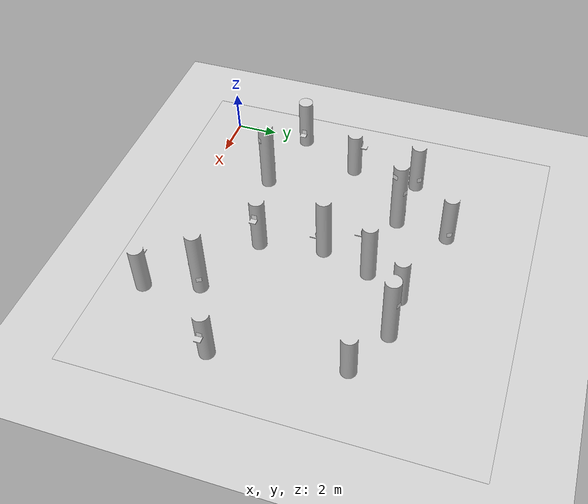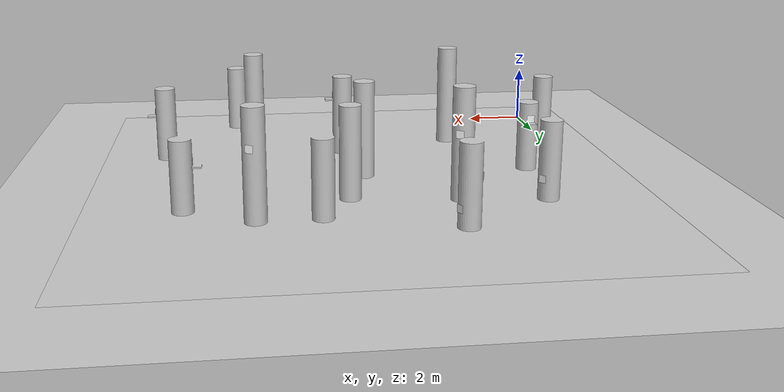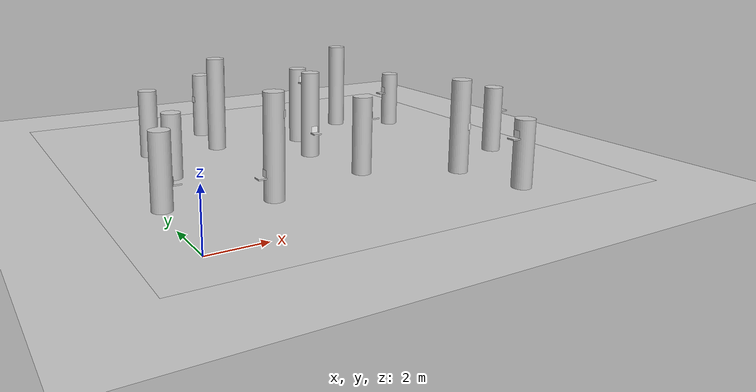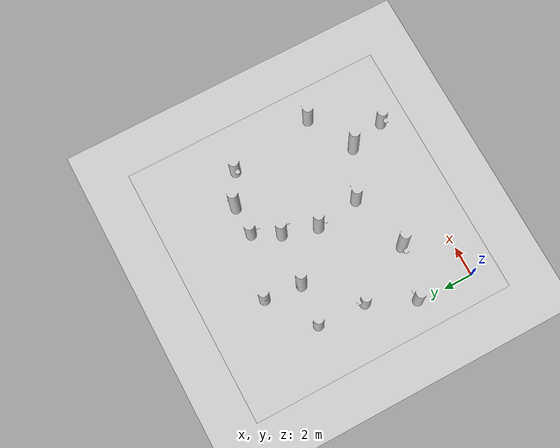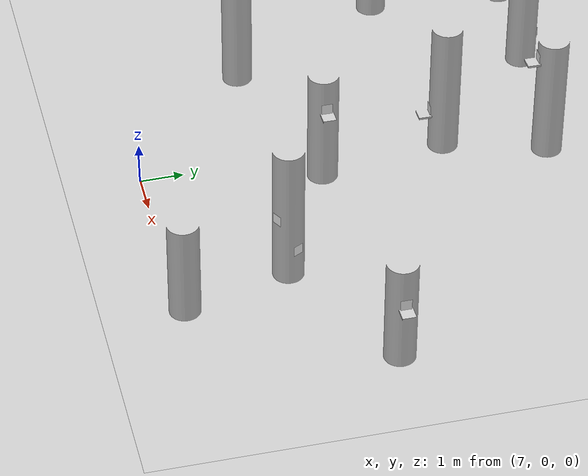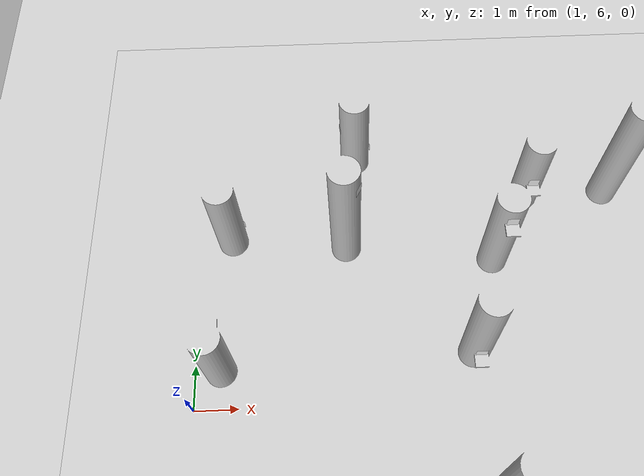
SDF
<?xml version="1.0" ?>
<sdf version="1.9">
  <world name="icuas26_3_world">
    <physics type="ode">
      <max_step_size>0.001</max_step_size>
      <real_time_factor>1.0</real_time_factor>
      <real_time_update_rate>1000</real_time_update_rate>
    </physics>
    <plugin name='gz::sim::systems::Physics' filename='libgz-sim-physics-system.so'/>
    <plugin name='gz::sim::systems::UserCommands' filename='libgz-sim-user-commands-system.so'/>
    <plugin name='gz::sim::systems::SceneBroadcaster' filename='libgz-sim-scene-broadcaster-system.so'/>
    <plugin name='gz::sim::systems::Contact' filename='libgz-sim-contact-system.so'/>
    <plugin name='gz::sim::systems::Imu' filename='libgz-sim-imu-system.so'/>
    <plugin name='gz::sim::systems::AirPressure' filename='libgz-sim-air-pressure-system.so'/>
    <plugin name='gz::sim::systems::Sensors' filename='libgz-sim-sensors-system.so'>
      <render_engine>ogre2</render_engine>
    </plugin>
    <gravity>0 0 -9.80665</gravity>
    <magnetic_field>6e-06 2.3e-05 -4.2e-05</magnetic_field>
    <atmosphere type='adiabatic'/>
    <scene>
      <grid>false</grid>
      <ambient>0.4 0.4 0.4 1</ambient>
      <background>0.7 0.7 0.7 1</background>
      <shadows>true</shadows>
    </scene>
    <model name="ground_plane">
      <pose>7.25 7.25 0 0 0 0</pose>
      <static>true</static>
      <link name="link">
        <collision name="collision">
          <geometry>
            <plane>
              <normal>0 0 1</normal>
              <size>18 18</size>
            </plane>
          </geometry>
        </collision>
        <visual name="visual">
          <geometry>
            <plane>
              <normal>0 0 1</normal>
              <size>18 18</size>
            </plane>
          </geometry>
          <material>
            <ambient>0.8 0.8 0.8 1</ambient>
            <diffuse>0.8 0.8 0.8 1</diffuse>
            <specular>0.8 0.8 0.8 1</specular>
          </material>
        </visual>
      </link>
    </model>
    <include>
      <pose>0 0 0 0 0 0</pose>
      <uri>model://icuas26_3</uri>
    </include>
    <include>
      <pose>3.3042047443389895 3.0164105892181396 0.9504941105842593 1.5707963267948966 0.0 -1.5707963267948966</pose>
      <uri>model://aruco_markers/aruco_marker_0019</uri>
    </include>
    <include>
      <pose>7.280031681060792 6.7047467651367185 1.101120948791504 1.5707963267948966 0.0 0.0</pose>
      <uri>model://aruco_markers/aruco_marker_0015</uri>
    </include>
    <include>
      <pose>1.5789307355880737 7.205932098388672 1.8464856147766113 1.5707963267948966 0.0 3.141592653589793</pose>
      <uri>model://aruco_markers/aruco_marker_0012</uri>
    </include>
    <include>
      <pose>11.232184928894043 0.07623559981584549 1.9033888578414917 1.5707963267948966 0.0 -1.5707963267948966</pose>
      <uri>model://aruco_markers/aruco_marker_0013</uri>
    </include>
    <include>
      <pose>0.5296725807189941 3.8332643508911133 0.9541147351264954 1.5707963267948966 0.0 1.5707963267948966</pose>
      <uri>model://aruco_markers/aruco_marker_0017</uri>
    </include>
    <include>
      <pose>12.803356689453125 9.99436092376709 1.5924251079559324 1.5707963267948966 0.0 -1.5707963267948966</pose>
      <uri>model://aruco_markers/aruco_marker_0018</uri>
    </include>
    <include>
      <pose>8.088266807556153 4.088751316070557 2.1333937644958496 1.5707963267948966 0.0 1.5707963267948966</pose>
      <uri>model://aruco_markers/aruco_marker_0016</uri>
    </include>
    <include>
      <pose>7.9748663902282715 8.995220703125 2.670133113861084 1.5707963267948966 0.0 0.0</pose>
      <uri>model://aruco_markers/aruco_marker_0020</uri>
    </include>
    <include>
      <pose>14.406678634643555 4.185126304626465 1.713401436805725 1.5707963267948966 0.0 1.5707963267948966</pose>
      <uri>model://aruco_markers/aruco_marker_0011</uri>
    </include>
    <include>
      <pose>8.950425148010254 10.696406883239746 1.3046667575836184 1.5707963267948966 0.0 0.0</pose>
      <uri>model://aruco_markers/aruco_marker_0014</uri>
    </include>
    <include>
      <pose>2.0369578420627246 10.270008342205937 0.7220956073790952 1.5707963267948966 0.0 2.258019880151343</pose>
      <uri>model://aruco_markers/aruco_marker_0010</uri>
    </include>
    <include>
      <pose>11.092804271980144 2.2277905482491134 1.7107628694726675 1.5707963267948966 0.0 0.4908710209265993</pose>
      <uri>model://aruco_markers/aruco_marker_0027</uri>
    </include>
    <include>
      <pose>4.780031246632437 9.613064703058429 3.1569114038540373 1.5707963267948966 0.0 1.0799192565542985</pose>
      <uri>model://aruco_markers/aruco_marker_0025</uri>
    </include>
    <include>
      <pose>11.104934107733106 11.428221239612693 2.341733596088834 1.5707963267948968 0.0 2.6507277584534616</pose>
      <uri>model://aruco_markers/aruco_marker_0028</uri>
    </include>
    <include>
      <pose>4.450665083008288 10.147992734966229 0.7855358888677281 1.5707963267948966 0.0 -3.0434156275847775</pose>
      <uri>model://aruco_markers/aruco_marker_0003</uri>
    </include>
    <include>
      <pose>4.658683764112178 10.102991846781382 2.2006346218593675 1.5707963267948966 0.0 2.6507244943217483</pose>
      <uri>model://aruco_markers/aruco_marker_0024</uri>
    </include>
    <include>
      <pose>11.223481012407804 2.67358115696361 0.895764261708703 1.5707963267948966 0.0 2.0616628230474494</pose>
      <uri>model://aruco_markers/aruco_marker_0002</uri>
    </include>
    <include>
      <pose>3.934883503191662 2.800479779805857 2.8578442506721284 1.5707963267948966 0.0 0.883569998619699</pose>
      <uri>model://aruco_markers/aruco_marker_0006</uri>
    </include>
    <include>
      <pose>5.111198445977226 12.394168674244076 0.6348794746323461 1.5707963267948968 0.0 2.0616673863257757</pose>
      <uri>model://aruco_markers/aruco_marker_0001</uri>
    </include>
    <include>
      <pose>4.438960751820465 12.231859521220699 1.57515245039408 1.5707963267948968 0.0 -1.4726255053350379</pose>
      <uri>model://aruco_markers/aruco_marker_0007</uri>
    </include>
    <light type="directional" name="sun">
      <cast_shadows>true</cast_shadows>
      <pose>0 0 20 0 0 0</pose>
      <diffuse>0.8 0.8 0.8 1</diffuse>
      <specular>0.2 0.2 0.2 1</specular>
      <attenuation>
        <range>1000</range>
        <constant>0.9</constant>
        <linear>0.01</linear>
        <quadratic>0.001</quadratic>
      </attenuation>
      <direction>-0.5 0.1 -0.9</direction>
    </light>
  </world>
</sdf>

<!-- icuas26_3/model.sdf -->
<sdf version="1.9">
  <model name="icuas26_3">
    <static>true</static>
    <link name="link">
      <collision name="collision">
        <geometry>
          <mesh>
            <uri>model://icuas26_3/meshes/icuas26_3.stl</uri>
          </mesh>
        </geometry>
      </collision>
      <visual name="visual">
        <geometry>
          <mesh>
            <uri>model://icuas26_3/meshes/icuas26_3.stl</uri>
          </mesh>
        </geometry>
        <material>
            <ambient>0.8 0.8 0.8 1</ambient>
            <diffuse>0.8 0.8 0.8 1</diffuse>
            <specular>0.8 0.8 0.8 1</specular>
        </material>
      </visual>
    </link>
  </model>
</sdf>

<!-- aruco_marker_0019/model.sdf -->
<sdf version="1.9">
  <model name="aruco_marker_0019">
    <static>true</static>
    <link name="link">
      <visual name="aruco_marker_0019_vis">
        <pose>0 0 0 0 0 0</pose>
        <geometry>
          <plane>
            <normal>0 0 1</normal>
            <size>0.25 0.25</size>
          </plane>
        </geometry>
        <material>
          <pbr>
            <metal>
              <albedo_map>marker_0019.png</albedo_map>
              <metalness>0.0</metalness>
            </metal>
          </pbr>
          <ambient>1 1 1 1</ambient>
          <diffuse>1 1 1 1</diffuse>
          <specular>0 0 0 1</specular>
        </material>
      </visual>
    </link>
  </model>
</sdf>

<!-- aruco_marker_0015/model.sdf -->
<sdf version="1.9">
  <model name="aruco_marker_0015">
    <static>true</static>
    <link name="link">
      <visual name="aruco_marker_0015_vis">
        <pose>0 0 0 0 0 0</pose>
        <geometry>
          <plane>
            <normal>0 0 1</normal>
            <size>0.25 0.25</size>
          </plane>
        </geometry>
        <material>
          <pbr>
            <metal>
              <albedo_map>marker_0015.png</albedo_map>
              <metalness>0.0</metalness>
            </metal>
          </pbr>
          <ambient>1 1 1 1</ambient>
          <diffuse>1 1 1 1</diffuse>
          <specular>0 0 0 1</specular>
        </material>
      </visual>
    </link>
  </model>
</sdf>

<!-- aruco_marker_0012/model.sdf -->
<sdf version="1.9">
  <model name="aruco_marker_0012">
    <static>true</static>
    <link name="link">
      <visual name="aruco_marker_0012_vis">
        <pose>0 0 0 0 0 0</pose>
        <geometry>
          <plane>
            <normal>0 0 1</normal>
            <size>0.25 0.25</size>
          </plane>
        </geometry>
        <material>
          <pbr>
            <metal>
              <albedo_map>marker_0012.png</albedo_map>
              <metalness>0.0</metalness>
            </metal>
          </pbr>
          <ambient>1 1 1 1</ambient>
          <diffuse>1 1 1 1</diffuse>
          <specular>0 0 0 1</specular>
        </material>
      </visual>
    </link>
  </model>
</sdf>

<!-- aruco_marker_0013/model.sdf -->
<sdf version="1.9">
  <model name="aruco_marker_0013">
    <static>true</static>
    <link name="link">
      <visual name="aruco_marker_0013_vis">
        <pose>0 0 0 0 0 0</pose>
        <geometry>
          <plane>
            <normal>0 0 1</normal>
            <size>0.25 0.25</size>
          </plane>
        </geometry>
        <material>
          <pbr>
            <metal>
              <albedo_map>marker_0013.png</albedo_map>
              <metalness>0.0</metalness>
            </metal>
          </pbr>
          <ambient>1 1 1 1</ambient>
          <diffuse>1 1 1 1</diffuse>
          <specular>0 0 0 1</specular>
        </material>
      </visual>
    </link>
  </model>
</sdf>

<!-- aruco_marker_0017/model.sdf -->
<sdf version="1.9">
  <model name="aruco_marker_0017">
    <static>true</static>
    <link name="link">
      <visual name="aruco_marker_0017_vis">
        <pose>0 0 0 0 0 0</pose>
        <geometry>
          <plane>
            <normal>0 0 1</normal>
            <size>0.25 0.25</size>
          </plane>
        </geometry>
        <material>
          <pbr>
            <metal>
              <albedo_map>marker_0017.png</albedo_map>
              <metalness>0.0</metalness>
            </metal>
          </pbr>
          <ambient>1 1 1 1</ambient>
          <diffuse>1 1 1 1</diffuse>
          <specular>0 0 0 1</specular>
        </material>
      </visual>
    </link>
  </model>
</sdf>

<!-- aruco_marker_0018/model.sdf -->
<sdf version="1.9">
  <model name="aruco_marker_0018">
    <static>true</static>
    <link name="link">
      <visual name="aruco_marker_0018_vis">
        <pose>0 0 0 0 0 0</pose>
        <geometry>
          <plane>
            <normal>0 0 1</normal>
            <size>0.25 0.25</size>
          </plane>
        </geometry>
        <material>
          <pbr>
            <metal>
              <albedo_map>marker_0018.png</albedo_map>
              <metalness>0.0</metalness>
            </metal>
          </pbr>
          <ambient>1 1 1 1</ambient>
          <diffuse>1 1 1 1</diffuse>
          <specular>0 0 0 1</specular>
        </material>
      </visual>
    </link>
  </model>
</sdf>

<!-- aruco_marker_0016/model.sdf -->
<sdf version="1.9">
  <model name="aruco_marker_0016">
    <static>true</static>
    <link name="link">
      <visual name="aruco_marker_0016_vis">
        <pose>0 0 0 0 0 0</pose>
        <geometry>
          <plane>
            <normal>0 0 1</normal>
            <size>0.25 0.25</size>
          </plane>
        </geometry>
        <material>
          <pbr>
            <metal>
              <albedo_map>marker_0016.png</albedo_map>
              <metalness>0.0</metalness>
            </metal>
          </pbr>
          <ambient>1 1 1 1</ambient>
          <diffuse>1 1 1 1</diffuse>
          <specular>0 0 0 1</specular>
        </material>
      </visual>
    </link>
  </model>
</sdf>

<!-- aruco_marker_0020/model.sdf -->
<sdf version="1.9">
  <model name="aruco_marker_0020">
    <static>true</static>
    <link name="link">
      <visual name="aruco_marker_0020_vis">
        <pose>0 0 0 0 0 0</pose>
        <geometry>
          <plane>
            <normal>0 0 1</normal>
            <size>0.25 0.25</size>
          </plane>
        </geometry>
        <material>
          <pbr>
            <metal>
              <albedo_map>marker_0020.png</albedo_map>
              <metalness>0.0</metalness>
            </metal>
          </pbr>
          <ambient>1 1 1 1</ambient>
          <diffuse>1 1 1 1</diffuse>
          <specular>0 0 0 1</specular>
        </material>
      </visual>
    </link>
  </model>
</sdf>

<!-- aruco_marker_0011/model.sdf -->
<sdf version="1.9">
  <model name="aruco_marker_0011">
    <static>true</static>
    <link name="link">
      <visual name="aruco_marker_0011_vis">
        <pose>0 0 0 0 0 0</pose>
        <geometry>
          <plane>
            <normal>0 0 1</normal>
            <size>0.25 0.25</size>
          </plane>
        </geometry>
        <material>
          <pbr>
            <metal>
              <albedo_map>marker_0011.png</albedo_map>
              <metalness>0.0</metalness>
            </metal>
          </pbr>
          <ambient>1 1 1 1</ambient>
          <diffuse>1 1 1 1</diffuse>
          <specular>0 0 0 1</specular>
        </material>
      </visual>
    </link>
  </model>
</sdf>

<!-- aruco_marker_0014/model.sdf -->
<sdf version="1.9">
  <model name="aruco_marker_0014">
    <static>true</static>
    <link name="link">
      <visual name="aruco_marker_0014_vis">
        <pose>0 0 0 0 0 0</pose>
        <geometry>
          <plane>
            <normal>0 0 1</normal>
            <size>0.25 0.25</size>
          </plane>
        </geometry>
        <material>
          <pbr>
            <metal>
              <albedo_map>marker_0014.png</albedo_map>
              <metalness>0.0</metalness>
            </metal>
          </pbr>
          <ambient>1 1 1 1</ambient>
          <diffuse>1 1 1 1</diffuse>
          <specular>0 0 0 1</specular>
        </material>
      </visual>
    </link>
  </model>
</sdf>

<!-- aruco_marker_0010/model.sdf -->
<sdf version="1.9">
  <model name="aruco_marker_0010">
    <static>true</static>
    <link name="link">
      <visual name="aruco_marker_0010_vis">
        <pose>0 0 0 0 0 0</pose>
        <geometry>
          <plane>
            <normal>0 0 1</normal>
            <size>0.25 0.25</size>
          </plane>
        </geometry>
        <material>
          <pbr>
            <metal>
              <albedo_map>marker_0010.png</albedo_map>
              <metalness>0.0</metalness>
            </metal>
          </pbr>
          <ambient>1 1 1 1</ambient>
          <diffuse>1 1 1 1</diffuse>
          <specular>0 0 0 1</specular>
        </material>
      </visual>
    </link>
  </model>
</sdf>

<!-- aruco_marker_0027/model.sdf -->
<sdf version="1.9">
  <model name="aruco_marker_0027">
    <static>true</static>
    <link name="link">
      <visual name="aruco_marker_0027_vis">
        <pose>0 0 0 0 0 0</pose>
        <geometry>
          <plane>
            <normal>0 0 1</normal>
            <size>0.25 0.25</size>
          </plane>
        </geometry>
        <material>
          <pbr>
            <metal>
              <albedo_map>marker_0027.png</albedo_map>
              <metalness>0.0</metalness>
            </metal>
          </pbr>
          <ambient>1 1 1 1</ambient>
          <diffuse>1 1 1 1</diffuse>
          <specular>0 0 0 1</specular>
        </material>
      </visual>
    </link>
  </model>
</sdf>

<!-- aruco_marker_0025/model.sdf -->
<sdf version="1.9">
  <model name="aruco_marker_0025">
    <static>true</static>
    <link name="link">
      <visual name="aruco_marker_0025_vis">
        <pose>0 0 0 0 0 0</pose>
        <geometry>
          <plane>
            <normal>0 0 1</normal>
            <size>0.25 0.25</size>
          </plane>
        </geometry>
        <material>
          <pbr>
            <metal>
              <albedo_map>marker_0025.png</albedo_map>
              <metalness>0.0</metalness>
            </metal>
          </pbr>
          <ambient>1 1 1 1</ambient>
          <diffuse>1 1 1 1</diffuse>
          <specular>0 0 0 1</specular>
        </material>
      </visual>
    </link>
  </model>
</sdf>

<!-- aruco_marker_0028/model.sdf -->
<sdf version="1.9">
  <model name="aruco_marker_0028">
    <static>true</static>
    <link name="link">
      <visual name="aruco_marker_0028_vis">
        <pose>0 0 0 0 0 0</pose>
        <geometry>
          <plane>
            <normal>0 0 1</normal>
            <size>0.25 0.25</size>
          </plane>
        </geometry>
        <material>
          <pbr>
            <metal>
              <albedo_map>marker_0028.png</albedo_map>
              <metalness>0.0</metalness>
            </metal>
          </pbr>
          <ambient>1 1 1 1</ambient>
          <diffuse>1 1 1 1</diffuse>
          <specular>0 0 0 1</specular>
        </material>
      </visual>
    </link>
  </model>
</sdf>

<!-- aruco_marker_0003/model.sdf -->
<sdf version="1.9">
  <model name="aruco_marker_0003">
    <static>true</static>
    <link name="link">
      <visual name="aruco_marker_0003_vis">
        <pose>0 0 0 0 0 0</pose>
        <geometry>
          <plane>
            <normal>0 0 1</normal>
            <size>0.25 0.25</size>
          </plane>
        </geometry>
        <material>
          <pbr>
            <metal>
              <albedo_map>marker_0003.png</albedo_map>
              <metalness>0.0</metalness>
            </metal>
          </pbr>
          <ambient>1 1 1 1</ambient>
          <diffuse>1 1 1 1</diffuse>
          <specular>0 0 0 1</specular>
        </material>
      </visual>
    </link>
  </model>
</sdf>

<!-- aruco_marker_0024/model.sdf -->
<sdf version="1.9">
  <model name="aruco_marker_0024">
    <static>true</static>
    <link name="link">
      <visual name="aruco_marker_0024_vis">
        <pose>0 0 0 0 0 0</pose>
        <geometry>
          <plane>
            <normal>0 0 1</normal>
            <size>0.25 0.25</size>
          </plane>
        </geometry>
        <material>
          <pbr>
            <metal>
              <albedo_map>marker_0024.png</albedo_map>
              <metalness>0.0</metalness>
            </metal>
          </pbr>
          <ambient>1 1 1 1</ambient>
          <diffuse>1 1 1 1</diffuse>
          <specular>0 0 0 1</specular>
        </material>
      </visual>
    </link>
  </model>
</sdf>

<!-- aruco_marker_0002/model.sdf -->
<sdf version="1.9">
  <model name="aruco_marker_0002">
    <static>true</static>
    <link name="link">
      <visual name="aruco_marker_0002_vis">
        <pose>0 0 0 0 0 0</pose>
        <geometry>
          <plane>
            <normal>0 0 1</normal>
            <size>0.25 0.25</size>
          </plane>
        </geometry>
        <material>
          <pbr>
            <metal>
              <albedo_map>marker_0002.png</albedo_map>
              <metalness>0.0</metalness>
            </metal>
          </pbr>
          <ambient>1 1 1 1</ambient>
          <diffuse>1 1 1 1</diffuse>
          <specular>0 0 0 1</specular>
        </material>
      </visual>
    </link>
  </model>
</sdf>

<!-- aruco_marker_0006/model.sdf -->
<sdf version="1.9">
  <model name="aruco_marker_0006">
    <static>true</static>
    <link name="link">
      <visual name="aruco_marker_0006_vis">
        <pose>0 0 0 0 0 0</pose>
        <geometry>
          <plane>
            <normal>0 0 1</normal>
            <size>0.25 0.25</size>
          </plane>
        </geometry>
        <material>
          <pbr>
            <metal>
              <albedo_map>marker_0006.png</albedo_map>
              <metalness>0.0</metalness>
            </metal>
          </pbr>
          <ambient>1 1 1 1</ambient>
          <diffuse>1 1 1 1</diffuse>
          <specular>0 0 0 1</specular>
        </material>
      </visual>
    </link>
  </model>
</sdf>

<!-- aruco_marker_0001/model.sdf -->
<sdf version="1.9">
  <model name="aruco_marker_0001">
    <static>true</static>
    <link name="link">
      <visual name="aruco_marker_0001_vis">
        <pose>0 0 0 0 0 0</pose>
        <geometry>
          <plane>
            <normal>0 0 1</normal>
            <size>0.25 0.25</size>
          </plane>
        </geometry>
        <material>
          <pbr>
            <metal>
              <albedo_map>marker_0001.png</albedo_map>
              <metalness>0.0</metalness>
            </metal>
          </pbr>
          <ambient>1 1 1 1</ambient>
          <diffuse>1 1 1 1</diffuse>
          <specular>0 0 0 1</specular>
        </material>
      </visual>
    </link>
  </model>
</sdf>

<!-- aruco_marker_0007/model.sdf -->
<sdf version="1.9">
  <model name="aruco_marker_0007">
    <static>true</static>
    <link name="link">
      <visual name="aruco_marker_0007_vis">
        <pose>0 0 0 0 0 0</pose>
        <geometry>
          <plane>
            <normal>0 0 1</normal>
            <size>0.25 0.25</size>
          </plane>
        </geometry>
        <material>
          <pbr>
            <metal>
              <albedo_map>marker_0007.png</albedo_map>
              <metalness>0.0</metalness>
            </metal>
          </pbr>
          <ambient>1 1 1 1</ambient>
          <diffuse>1 1 1 1</diffuse>
          <specular>0 0 0 1</specular>
        </material>
      </visual>
    </link>
  </model>
</sdf>
